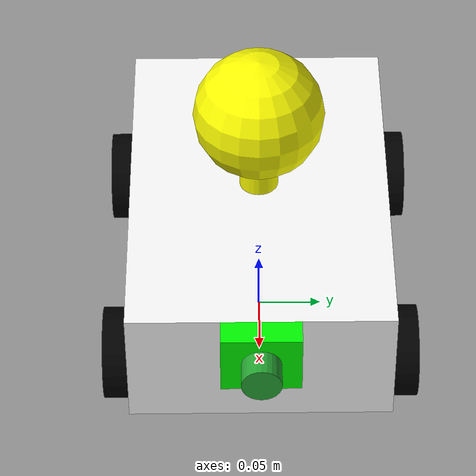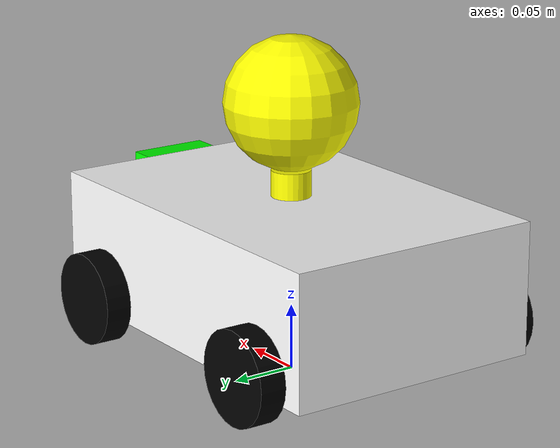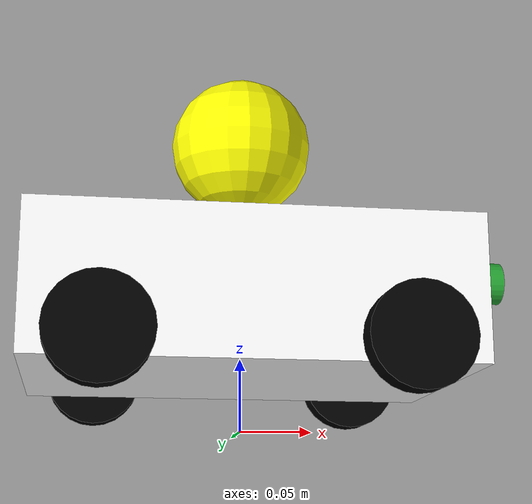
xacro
<?xml version="1.0"?>
<robot xmlns:xacro="http://www.ros.org/wiki/xacro"  name="robot_car">

    <xacro:arg name="use_ros2_control" default="true" />

    <xacro:include filename="car.xacro" />

    <!-- if else statement for controller types -->
    <xacro:if value="$(arg use_ros2_control)">
        <xacro:include filename="ros2_control.xacro"/>
    </xacro:if>
    <xacro:unless value="$(arg use_ros2_control)">
        <xacro:include filename="gazebo_control.xacro" />
    </xacro:unless>

    <xacro:include filename="camera.xacro"/>
    <xacro:include filename="marker.xacro"/>

</robot>

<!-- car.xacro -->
<robot xmlns:xacro="http://www.ros.org/wiki/xacro">

    <xacro:property name="wheel_radius" value="0.035" />
    <xacro:property name="wheel_length" value="0.02" />
    <xacro:property name="chassis_width" value="0.2" />
    <xacro:property name="chassis_length" value="0.3" />
    <xacro:property name="chassis_height" value="0.1" />

    <material name="black">
        <color rgba="0 0 0 1"/>
    </material>

    <material name="white">
        <color rgba="1 1 1 1"/>
    </material>

    <material name="red">
        <color rgba="1 0 0 1"/>
    </material>

    <material name="yellow">
        <color rgba="1 1 0 1"/>
    </material>

    <link name="base_link">

    </link>

    <joint name="base_footprint_joint" type="fixed">
        <parent link="base_link"/>
        <child link="base_footprint"/>
        <origin xyz="0 0 0" rpy="0 0 0"/>
    </joint>

    <link name="base_footprint">
    </link>

    <joint name="chassis_joint" type="fixed">
        <origin xyz="0 0 ${wheel_radius+chassis_height/2}" />
        <parent link="base_link"/>
        <child link="chassis"/>
    </joint>

    <link name="chassis">
        <visual>
            <geometry>
            <box size="${chassis_length} ${chassis_width} ${chassis_height}"/>
            </geometry>
            <material name="white"/>
        </visual>
        <collision>
            <geometry>
                <box size="${chassis_length} ${chassis_width} ${chassis_height}"/>
            </geometry>
        </collision>
        <inertial>
            <mass value="2"/>
            <inertia ixx="1.75e-2" iyy="4.17e-3" izz="1.08e-2" ixy="0" ixz="0" iyz="0"/>
        </inertial>
    </link>

    <gazebo reference="chassis">
        <material>Gazebo/White</material>
    </gazebo>

    <link name="left_front_wheel">
        <visual>
            <geometry>
            <cylinder length="${wheel_length}" radius="${wheel_radius}"/>
            </geometry>
            <material name="black"/>
        </visual>
        <collision>
            <geometry>
                <cylinder length="${wheel_length}" radius="${wheel_radius}"/>
            </geometry>
        </collision>
        <inertial>
            <mass value="0.1"/>
            <inertia ixx="2.53e-4" iyy="2.53e-4" izz="5e-4" ixy="0" ixz="0" iyz="0"/>
        </inertial>
    </link>

    <gazebo reference="left_front_wheel">
        <material>Gazebo/Black</material>
    </gazebo>

    <joint name="left_front_wheel_joint" type="continuous">
        <axis xyz="0 0 1"/>
        <parent link="chassis"/>
        <child link="left_front_wheel"/>
        <origin rpy="${-pi/2} 0 0" xyz="0.1 ${(chassis_width+wheel_length)/2} ${-wheel_radius}"/> <!-- ${(chassis_width+wheel_length)/2} -->
    </joint>

    <link name="right_front_wheel">
        <visual>
            <geometry>
                <cylinder length="${wheel_length}" radius="${wheel_radius}"/>
            </geometry>
            <material name="black"/>
        </visual>
        <collision>
            <geometry>
                <cylinder length="${wheel_length}" radius="${wheel_radius}"/>
            </geometry>
        </collision>
        <inertial>
            <mass value="0.1"/>
            <inertia ixx="2.53e-4" iyy="2.53e-4" izz="5e-4" ixy="0" ixz="0" iyz="0"/>
        </inertial>
    </link>

    <gazebo reference="right_front_wheel">
        <material>Gazebo/Black</material>
    </gazebo>

    <joint name="right_front_wheel_joint" type="continuous">
        <axis rpy="0 0 0" xyz="0 0 1"/>
        <parent link="chassis"/>
        <child link="right_front_wheel"/>
        <origin rpy="${-pi/2} 0 0" xyz="0.1 -${(chassis_width+wheel_length)/2} ${-wheel_radius}"/> <!-- ${-(chassis_width+wheel_length)/2} -->
    </joint>

    <link name="left_back_wheel">
        <visual>
            <geometry>
                <cylinder length="${wheel_length}" radius="${wheel_radius}"/>
            </geometry>
            <material name="black"/>
        </visual>
        <collision>
            <geometry>
                <cylinder length="${wheel_length}" radius="${wheel_radius}"/>
            </geometry>
        </collision>
        <inertial>
            <mass value="0.1"/>
            <inertia ixx="2.53e-4" iyy="2.53e-4" izz="5e-4" ixy="0" ixz="0" iyz="0"/>
        </inertial>
    </link>

    <gazebo reference="left_back_wheel">
        <material>Gazebo/Black</material>
        <mu1 value="0.0001"/>
        <mu2 value="0.0001"/>
    </gazebo>

    <joint name="left_back_wheel_joint" type="fixed">
        <parent link="chassis"/>
        <child link="left_back_wheel"/>
        <origin rpy="${-pi/2} 0 0" xyz="-0.1 ${(chassis_width+wheel_length)/2} ${-wheel_radius}"/> <!-- ${(chassis_width+wheel_length)/2} -->
    </joint>

    <link name="right_back_wheel">
        <visual>
            <geometry>
                <cylinder length="${wheel_length}" radius="${wheel_radius}"/>
            </geometry>
            <material name="black"/>
        </visual>
        <collision>
            <geometry>
                <cylinder length="${wheel_length}" radius="${wheel_radius}"/>
            </geometry>
        </collision>
        <inertial>
            <mass value="0.1"/>
            <inertia ixx="2.53e-4" iyy="2.53e-4" izz="5e-4" ixy="0" ixz="0" iyz="0"/>
        </inertial>
    </link>

    <gazebo reference="right_back_wheel">
        <material>Gazebo/Black</material>
        <mu1 value="0.0001"/>
        <mu2 value="0.0001"/>
    </gazebo>

    <joint name="right_back_wheel_joint" type="fixed">
        <parent link="chassis"/>
        <child link="right_back_wheel"/>
        <origin rpy="${-pi/2} 0 0" xyz="-0.1 ${-(chassis_width+wheel_length)/2} ${-wheel_radius}"/> <!-- ${-(chassis_width+wheel_length)/2} -->
    </joint>

</robot>

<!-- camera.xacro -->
<robot xmlns:xacro="http://www.ros.org/wiki/xacro">

    <xacro:property name="cam_thickness" value="0.02" />
    <xacro:property name="cam_width" value="0.06"/>
    <xacro:property name="cam_height" value="0.05"/>
    <xacro:property name="lens_radius" value="0.015"/>
    <xacro:property name="lens_length" value="0.04"/>

    <material name="green">
        <color rgba="0 1 0 1"/>
    </material>

    <joint name="camera_joint" type="fixed">
        <parent link="chassis"/>
        <child link="camera"/>
        <origin xyz="${(chassis_length+cam_thickness)/2} 0 ${(chassis_height-cam_height)/2}" rpy="0 0 0"/> <!-- ${(chassis_height+cam_height)/2} -->
    </joint>

    <link name="camera">
        <visual>
            <geometry>
                <box size="${cam_thickness} ${cam_width} ${cam_height}"/>
            </geometry>
            <material name="green"/>
        </visual>
        <visual>
            <origin xyz="${cam_thickness/2} 0 0" rpy="0  ${-pi/2} 0"/>
            <geometry>
                <cylinder radius="${lens_radius}" length="${lens_length}"/>
            </geometry>
        </visual>
    </link>

    <joint name="camera_optical_joint" type="fixed">
        <parent link="camera"/>
        <child link="camera_optical"/>
        <origin xyz="0 0 0" rpy="${-pi/2} 0 ${-pi/2}"/>
    </joint>

    <link name="camera_optical"></link>

    <gazebo reference="camera">
        <material>Gazebo/Green</material>

        <sensor name="camera" type="camera">
            <pose> 0 0 0 0 0 0 </pose>
            <visualize>true</visualize>
            <update_rate>10</update_rate>
            <camera>
                <horizontal_fov>1.089</horizontal_fov> <!-- 1.089 in radians -->
                <image>
                    <format>R8G8B8</format>
                    <width>640</width>
                    <height>480</height>
                </image>
                <clip> <!-- range camera can see -->
                    <near>0.05</near>
                    <far>8.0</far>
                </clip>
            </camera>
            <plugin name="camera_controller" filename="libgazebo_ros_camera.so">
                <frame_name>camera_optical</frame_name> <!-- due to different standards in ros and gazebo -->
            </plugin>
        </sensor>
    </gazebo>
</robot>

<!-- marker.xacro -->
<robot xmlns:xacro="http://www.ros.org/wiki/xacro">

    <xacro:property name="marker_radius" value="0.05" />
    <xacro:property name="marker_height" value="0.02" />

    <joint name="marker_joint" type="fixed">
        <parent link="chassis"/>
        <child link="marker"/>
        <origin xyz="0 0 ${(chassis_height + marker_height)/2}" rpy="0 0 0"/>
    </joint>

    <link name="marker">
        <visual>
            <geometry>
                <cylinder radius="${lens_radius}" length="${marker_height}"/>
            </geometry>
            <material name="yellow"/>
        </visual>
        <visual>
            <origin xyz="0 0 ${marker_height/2 + marker_radius}" rpy="0 0 0"/>
            <geometry>
                <sphere radius="${marker_radius}"/>
            </geometry>
            <material name="yellow"/>
        </visual>
        <collision>
            <geometry>
                <sphere radius="${marker_radius}"/>
            </geometry>
        </collision>
        <inertial>
            <mass value="0.1"/>
            <inertia ixx="2.53e-4" iyy="2.53e-4" izz="5e-4" ixy="0" ixz="0" iyz="0"/>
        </inertial>
    </link>

    <gazebo reference="marker">
        <material>Gazebo/Yellow</material>
    </gazebo>

</robot>
